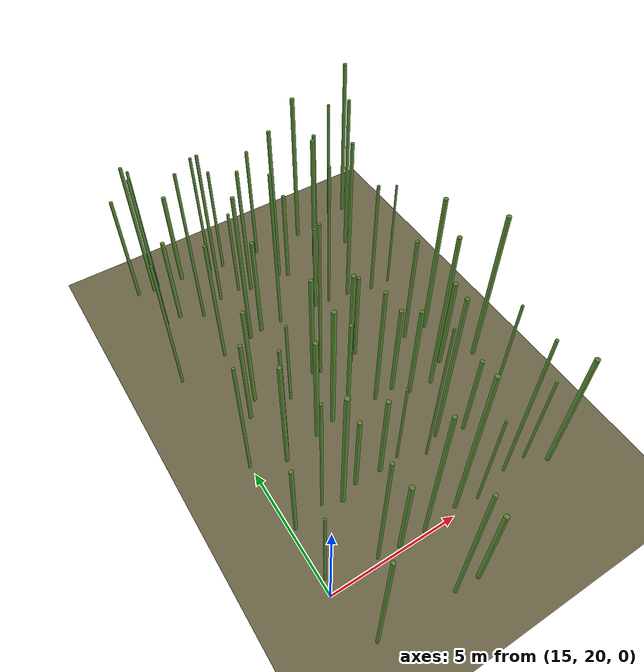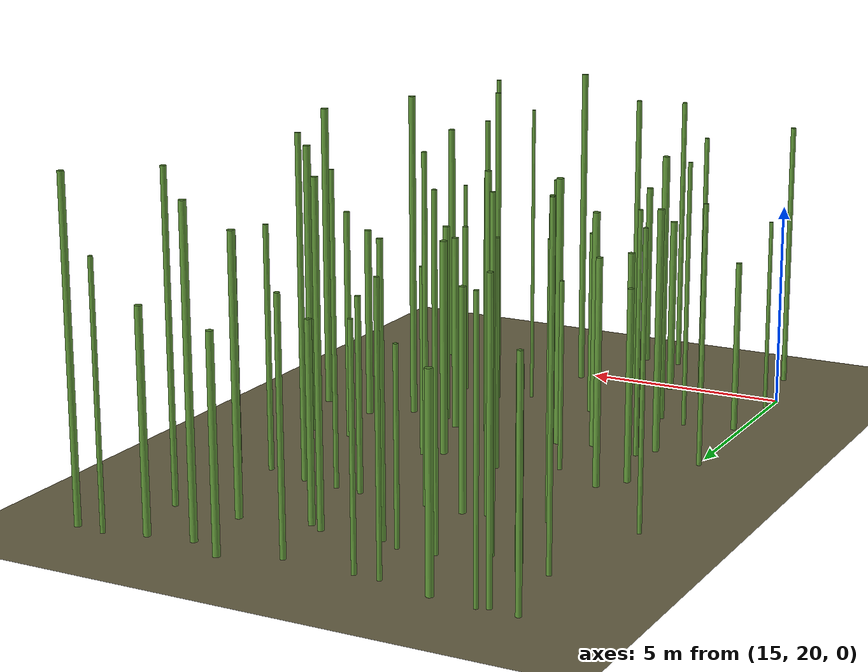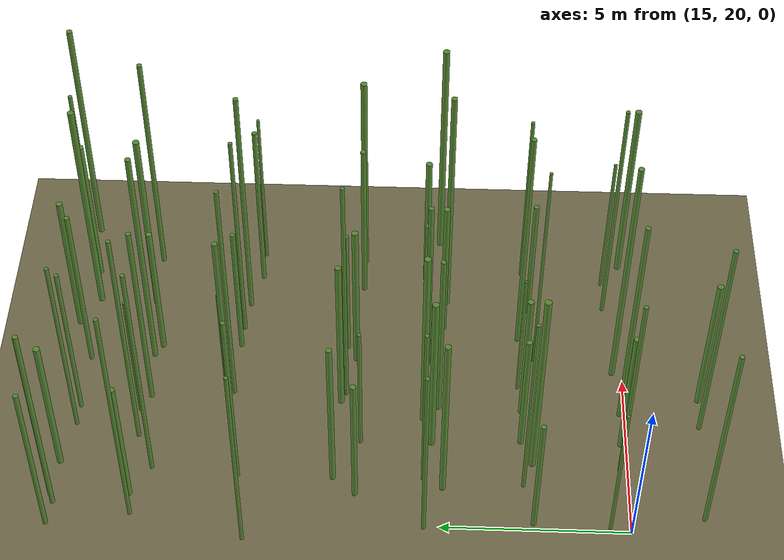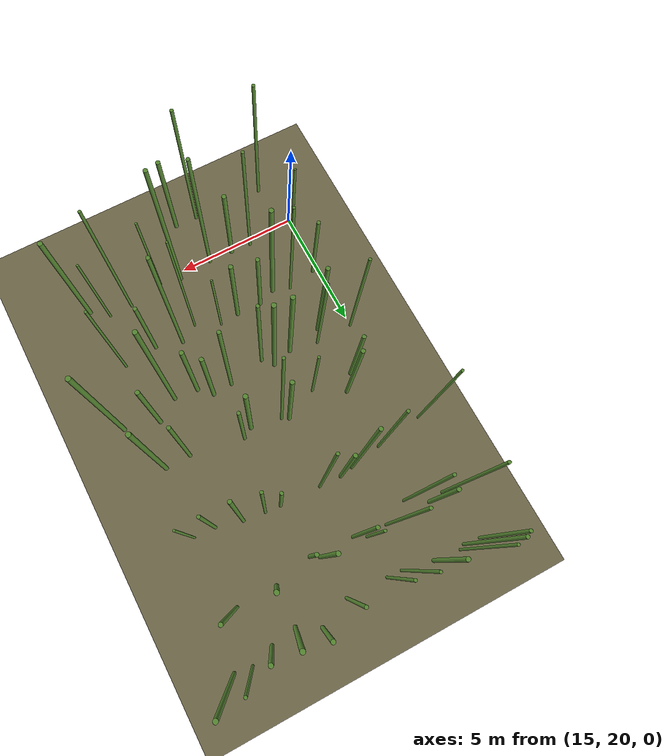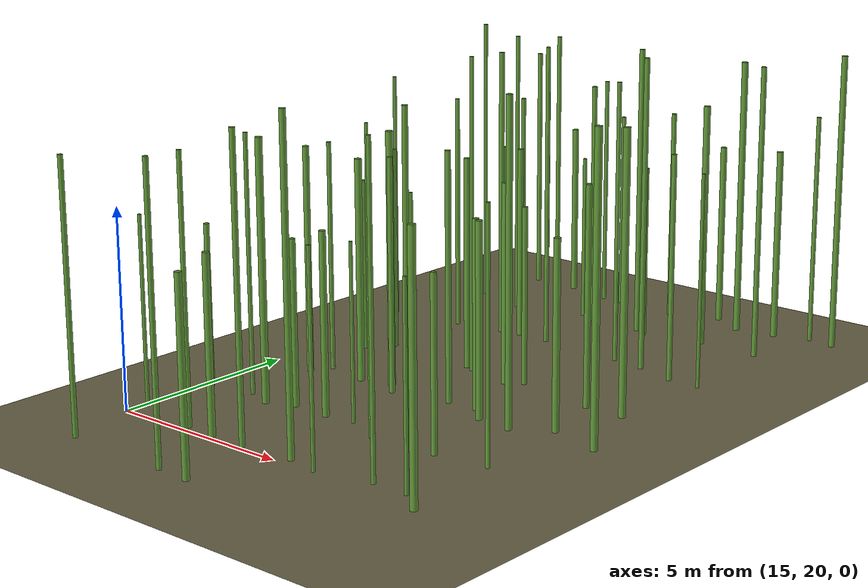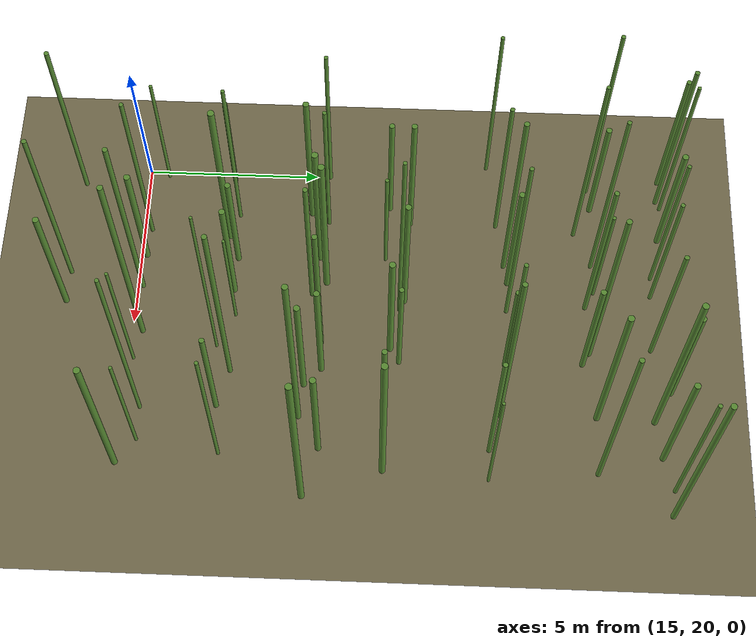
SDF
<sdf version="1.9">
 <world name="bamboo_field">
  <model name="ground_plane">
   <static>true</static>
   <link name="link">
    <collision name="collision">
     <geometry><plane><normal>0 0 1</normal><size>80.0 80.0</size></plane></geometry>
    </collision>
    <visual name="visual">
     <geometry><plane><normal>0 0 1</normal><size>80.0 80.0</size></plane></geometry>
     <material><diffuse>0.45 0.42 0.30 1</diffuse></material>
    </visual>
   </link>
  </model>
  <model name="bamboo_1522">
   <static>true</static>
   <pose>15.490901857358496 18.08850174011366 3.3179436203893204 0 0 0</pose>
   <link name="link">
    <collision name="collision">
     <geometry>
      <cylinder><radius>0.06358761564114757</radius><length>6.635887240778641</length></cylinder>
     </geometry>
    </collision>
    <visual name="visual">
     <geometry>
      <cylinder><radius>0.06358761564114757</radius><length>6.635887240778641</length></cylinder>
     </geometry>
     <material><diffuse>0.35 0.55 0.20 1</diffuse><specular>0.1 0.1 0.1 1</specular></material>
    </visual>
   </link>
  </model>
  <model name="bamboo_1525">
   <static>true</static>
   <pose>18.474241849818807 18.005302006522594 3.519818562739112 0 0 0</pose>
   <link name="link">
    <collision name="collision">
     <geometry>
      <cylinder><radius>0.06382065032558865</radius><length>7.039637125478224</length></cylinder>
     </geometry>
    </collision>
    <visual name="visual">
     <geometry>
      <cylinder><radius>0.06382065032558865</radius><length>7.039637125478224</length></cylinder>
     </geometry>
     <material><diffuse>0.35 0.55 0.20 1</diffuse><specular>0.1 0.1 0.1 1</specular></material>
    </visual>
   </link>
  </model>
  <model name="bamboo_1526">
   <static>true</static>
   <pose>19.405101789177046 17.968382880155293 2.347995917918729 0 0 0</pose>
   <link name="link">
    <collision name="collision">
     <geometry>
      <cylinder><radius>0.08498971547214515</radius><length>4.695991835837458</length></cylinder>
     </geometry>
    </collision>
    <visual name="visual">
     <geometry>
      <cylinder><radius>0.08498971547214515</radius><length>4.695991835837458</length></cylinder>
     </geometry>
     <material><diffuse>0.35 0.55 0.20 1</diffuse><specular>0.1 0.1 0.1 1</specular></material>
    </visual>
   </link>
  </model>
  <model name="bamboo_1593">
   <static>true</static>
   <pose>15.125374645759347 20.552177662558808 2.3669015575007712 0 0 0</pose>
   <link name="link">
    <collision name="collision">
     <geometry>
      <cylinder><radius>0.04673027699196455</radius><length>4.7338031150015425</length></cylinder>
     </geometry>
    </collision>
    <visual name="visual">
     <geometry>
      <cylinder><radius>0.04673027699196455</radius><length>4.7338031150015425</length></cylinder>
     </geometry>
     <material><diffuse>0.35 0.55 0.20 1</diffuse><specular>0.1 0.1 0.1 1</specular></material>
    </visual>
   </link>
  </model>
  <model name="bamboo_1594">
   <static>true</static>
   <pose>16.987656100251545 20.217749298145065 3.29880952020775 0 0 0</pose>
   <link name="link">
    <collision name="collision">
     <geometry>
      <cylinder><radius>0.058493695435638385</radius><length>6.5976190404155</length></cylinder>
     </geometry>
    </collision>
    <visual name="visual">
     <geometry>
      <cylinder><radius>0.058493695435638385</radius><length>6.5976190404155</length></cylinder>
     </geometry>
     <material><diffuse>0.35 0.55 0.20 1</diffuse><specular>0.1 0.1 0.1 1</specular></material>
    </visual>
   </link>
  </model>
  <model name="bamboo_1595">
   <static>true</static>
   <pose>17.833704743021098 20.14952041715921 2.193797204379194 0 0 0</pose>
   <link name="link">
    <collision name="collision">
     <geometry>
      <cylinder><radius>0.08723840496428546</radius><length>4.387594408758388</length></cylinder>
     </geometry>
    </collision>
    <visual name="visual">
     <geometry>
      <cylinder><radius>0.08723840496428546</radius><length>4.387594408758388</length></cylinder>
     </geometry>
     <material><diffuse>0.35 0.55 0.20 1</diffuse><specular>0.1 0.1 0.1 1</specular></material>
    </visual>
   </link>
  </model>
  <model name="bamboo_1596">
   <static>true</static>
   <pose>18.849895976428396 20.136698420463258 3.688130854488068 0 0 0</pose>
   <link name="link">
    <collision name="collision">
     <geometry>
      <cylinder><radius>0.06899141032555248</radius><length>7.376261708976136</length></cylinder>
     </geometry>
    </collision>
    <visual name="visual">
     <geometry>
      <cylinder><radius>0.06899141032555248</radius><length>7.376261708976136</length></cylinder>
     </geometry>
     <material><diffuse>0.35 0.55 0.20 1</diffuse><specular>0.1 0.1 0.1 1</specular></material>
    </visual>
   </link>
  </model>
  <model name="bamboo_1597">
   <static>true</static>
   <pose>20.283399732514855 20.274132848841692 3.97841074661888 0 0 0</pose>
   <link name="link">
    <collision name="collision">
     <geometry>
      <cylinder><radius>0.07673128742068416</radius><length>7.95682149323776</length></cylinder>
     </geometry>
    </collision>
    <visual name="visual">
     <geometry>
      <cylinder><radius>0.07673128742068416</radius><length>7.95682149323776</length></cylinder>
     </geometry>
     <material><diffuse>0.35 0.55 0.20 1</diffuse><specular>0.1 0.1 0.1 1</specular></material>
    </visual>
   </link>
  </model>
  <model name="bamboo_1598">
   <static>true</static>
   <pose>21.148964133604604 20.102432319429255 2.569581913435348 0 0 0</pose>
   <link name="link">
    <collision name="collision">
     <geometry>
      <cylinder><radius>0.04497332675283611</radius><length>5.139163826870696</length></cylinder>
     </geometry>
    </collision>
    <visual name="visual">
     <geometry>
      <cylinder><radius>0.04497332675283611</radius><length>5.139163826870696</length></cylinder>
     </geometry>
     <material><diffuse>0.35 0.55 0.20 1</diffuse><specular>0.1 0.1 0.1 1</specular></material>
    </visual>
   </link>
  </model>
  <model name="bamboo_1599">
   <static>true</static>
   <pose>22.63370897902683 20.43816653282347 3.8353861310992987 0 0 0</pose>
   <link name="link">
    <collision name="collision">
     <geometry>
      <cylinder><radius>0.0544239410531539</radius><length>7.670772262198597</length></cylinder>
     </geometry>
    </collision>
    <visual name="visual">
     <geometry>
      <cylinder><radius>0.0544239410531539</radius><length>7.670772262198597</length></cylinder>
     </geometry>
     <material><diffuse>0.35 0.55 0.20 1</diffuse><specular>0.1 0.1 0.1 1</specular></material>
    </visual>
   </link>
  </model>
  <model name="bamboo_1600">
   <static>true</static>
   <pose>23.59850441517398 20.43914368648169 2.413686224105409 0 0 0</pose>
   <link name="link">
    <collision name="collision">
     <geometry>
      <cylinder><radius>0.04705015625654757</radius><length>4.827372448210818</length></cylinder>
     </geometry>
    </collision>
    <visual name="visual">
     <geometry>
      <cylinder><radius>0.04705015625654757</radius><length>4.827372448210818</length></cylinder>
     </geometry>
     <material><diffuse>0.35 0.55 0.20 1</diffuse><specular>0.1 0.1 0.1 1</specular></material>
    </visual>
   </link>
  </model>
  <model name="bamboo_1601">
   <static>true</static>
   <pose>24.281585869360576 19.915403944170297 3.079659499792992 0 0 0</pose>
   <link name="link">
    <collision name="collision">
     <geometry>
      <cylinder><radius>0.08799283515313433</radius><length>6.159318999585984</length></cylinder>
     </geometry>
    </collision>
    <visual name="visual">
     <geometry>
      <cylinder><radius>0.08799283515313433</radius><length>6.159318999585984</length></cylinder>
     </geometry>
     <material><diffuse>0.35 0.55 0.20 1</diffuse><specular>0.1 0.1 0.1 1</specular></material>
    </visual>
   </link>
  </model>
  <model name="bamboo_1662">
   <static>true</static>
   <pose>15.203745911737995 22.542928623539368 2.0670563824060277 0 0 0</pose>
   <link name="link">
    <collision name="collision">
     <geometry>
      <cylinder><radius>0.07033872070648813</radius><length>4.1341127648120555</length></cylinder>
     </geometry>
    </collision>
    <visual name="visual">
     <geometry>
      <cylinder><radius>0.07033872070648813</radius><length>4.1341127648120555</length></cylinder>
     </geometry>
     <material><diffuse>0.35 0.55 0.20 1</diffuse><specular>0.1 0.1 0.1 1</specular></material>
    </visual>
   </link>
  </model>
  <model name="bamboo_1663">
   <static>true</static>
   <pose>16.40864536026427 22.78414221152748 3.250540823597118 0 0 0</pose>
   <link name="link">
    <collision name="collision">
     <geometry>
      <cylinder><radius>0.052651897696470405</radius><length>6.501081647194236</length></cylinder>
     </geometry>
    </collision>
    <visual name="visual">
     <geometry>
      <cylinder><radius>0.052651897696470405</radius><length>6.501081647194236</length></cylinder>
     </geometry>
     <material><diffuse>0.35 0.55 0.20 1</diffuse><specular>0.1 0.1 0.1 1</specular></material>
    </visual>
   </link>
  </model>
  <model name="bamboo_1664">
   <static>true</static>
   <pose>17.117331342553623 22.53922810676523 3.264480165458928 0 0 0</pose>
   <link name="link">
    <collision name="collision">
     <geometry>
      <cylinder><radius>0.0898615788696506</radius><length>6.528960330917856</length></cylinder>
     </geometry>
    </collision>
    <visual name="visual">
     <geometry>
      <cylinder><radius>0.0898615788696506</radius><length>6.528960330917856</length></cylinder>
     </geometry>
     <material><diffuse>0.35 0.55 0.20 1</diffuse><specular>0.1 0.1 0.1 1</specular></material>
    </visual>
   </link>
  </model>
  <model name="bamboo_1665">
   <static>true</static>
   <pose>17.844281614476152 22.83379981024662 2.076387187384573 0 0 0</pose>
   <link name="link">
    <collision name="collision">
     <geometry>
      <cylinder><radius>0.08037153426702592</radius><length>4.152774374769146</length></cylinder>
     </geometry>
    </collision>
    <visual name="visual">
     <geometry>
      <cylinder><radius>0.08037153426702592</radius><length>4.152774374769146</length></cylinder>
     </geometry>
     <material><diffuse>0.35 0.55 0.20 1</diffuse><specular>0.1 0.1 0.1 1</specular></material>
    </visual>
   </link>
  </model>
  <model name="bamboo_1666">
   <static>true</static>
   <pose>18.879073243768648 22.799876409936058 2.2632964116755816 0 0 0</pose>
   <link name="link">
    <collision name="collision">
     <geometry>
      <cylinder><radius>0.0835456610660788</radius><length>4.526592823351163</length></cylinder>
     </geometry>
    </collision>
    <visual name="visual">
     <geometry>
      <cylinder><radius>0.0835456610660788</radius><length>4.526592823351163</length></cylinder>
     </geometry>
     <material><diffuse>0.35 0.55 0.20 1</diffuse><specular>0.1 0.1 0.1 1</specular></material>
    </visual>
   </link>
  </model>
  <model name="bamboo_1667">
   <static>true</static>
   <pose>19.688650073200158 22.896196615216272 2.194950921206032 0 0 0</pose>
   <link name="link">
    <collision name="collision">
     <geometry>
      <cylinder><radius>0.04311627362453809</radius><length>4.389901842412064</length></cylinder>
     </geometry>
    </collision>
    <visual name="visual">
     <geometry>
      <cylinder><radius>0.04311627362453809</radius><length>4.389901842412064</length></cylinder>
     </geometry>
     <material><diffuse>0.35 0.55 0.20 1</diffuse><specular>0.1 0.1 0.1 1</specular></material>
    </visual>
   </link>
  </model>
  <model name="bamboo_1668">
   <static>true</static>
   <pose>20.679225602817034 22.42935041537308 3.6745470564364036 0 0 0</pose>
   <link name="link">
    <collision name="collision">
     <geometry>
      <cylinder><radius>0.04083372270042635</radius><length>7.349094112872807</length></cylinder>
     </geometry>
    </collision>
    <visual name="visual">
     <geometry>
      <cylinder><radius>0.04083372270042635</radius><length>7.349094112872807</length></cylinder>
     </geometry>
     <material><diffuse>0.35 0.55 0.20 1</diffuse><specular>0.1 0.1 0.1 1</specular></material>
    </visual>
   </link>
  </model>
  <model name="bamboo_1669">
   <static>true</static>
   <pose>21.430626480708806 22.866195828497126 3.8886019493081654 0 0 0</pose>
   <link name="link">
    <collision name="collision">
     <geometry>
      <cylinder><radius>0.06934237447460574</radius><length>7.777203898616331</length></cylinder>
     </geometry>
    </collision>
    <visual name="visual">
     <geometry>
      <cylinder><radius>0.06934237447460574</radius><length>7.777203898616331</length></cylinder>
     </geometry>
     <material><diffuse>0.35 0.55 0.20 1</diffuse><specular>0.1 0.1 0.1 1</specular></material>
    </visual>
   </link>
  </model>
  <model name="bamboo_1670">
   <static>true</static>
   <pose>22.507990680239413 22.55888220103141 2.129909801377951 0 0 0</pose>
   <link name="link">
    <collision name="collision">
     <geometry>
      <cylinder><radius>0.0734820587417049</radius><length>4.259819602755902</length></cylinder>
     </geometry>
    </collision>
    <visual name="visual">
     <geometry>
      <cylinder><radius>0.0734820587417049</radius><length>4.259819602755902</length></cylinder>
     </geometry>
     <material><diffuse>0.35 0.55 0.20 1</diffuse><specular>0.1 0.1 0.1 1</specular></material>
    </visual>
   </link>
  </model>
  <model name="bamboo_1671">
   <static>true</static>
   <pose>23.920477524274368 22.730594115170106 3.0109316618629025 0 0 0</pose>
   <link name="link">
    <collision name="collision">
     <geometry>
      <cylinder><radius>0.049934170055656396</radius><length>6.021863323725805</length></cylinder>
     </geometry>
    </collision>
    <visual name="visual">
     <geometry>
      <cylinder><radius>0.049934170055656396</radius><length>6.021863323725805</length></cylinder>
     </geometry>
     <material><diffuse>0.35 0.55 0.20 1</diffuse><specular>0.1 0.1 0.1 1</specular></material>
    </visual>
   </link>
  </model>
  <model name="bamboo_1729">
   <static>true</static>
   <pose>14.98791301596557 25.394181226632817 3.071254097409671 0 0 0</pose>
   <link name="link">
    <collision name="collision">
     <geometry>
      <cylinder><radius>0.0558887548380735</radius><length>6.142508194819342</length></cylinder>
     </geometry>
    </collision>
    <visual name="visual">
     <geometry>
      <cylinder><radius>0.0558887548380735</radius><length>6.142508194819342</length></cylinder>
     </geometry>
     <material><diffuse>0.35 0.55 0.20 1</diffuse><specular>0.1 0.1 0.1 1</specular></material>
    </visual>
   </link>
  </model>
  <model name="bamboo_1730">
   <static>true</static>
   <pose>16.25806233526042 24.917180254728883 2.898911851003286 0 0 0</pose>
   <link name="link">
    <collision name="collision">
     <geometry>
      <cylinder><radius>0.08130692181160686</radius><length>5.797823702006572</length></cylinder>
     </geometry>
    </collision>
    <visual name="visual">
     <geometry>
      <cylinder><radius>0.08130692181160686</radius><length>5.797823702006572</length></cylinder>
     </geometry>
     <material><diffuse>0.35 0.55 0.20 1</diffuse><specular>0.1 0.1 0.1 1</specular></material>
    </visual>
   </link>
  </model>
  <model name="bamboo_1731">
   <static>true</static>
   <pose>16.547277536909057 25.42793823514104 2.9280429729251654 0 0 0</pose>
   <link name="link">
    <collision name="collision">
     <geometry>
      <cylinder><radius>0.05670274241377968</radius><length>5.856085945850331</length></cylinder>
     </geometry>
    </collision>
    <visual name="visual">
     <geometry>
      <cylinder><radius>0.05670274241377968</radius><length>5.856085945850331</length></cylinder>
     </geometry>
     <material><diffuse>0.35 0.55 0.20 1</diffuse><specular>0.1 0.1 0.1 1</specular></material>
    </visual>
   </link>
  </model>
  <model name="bamboo_1732">
   <static>true</static>
   <pose>17.725521251286683 25.22605479235253 2.820587608052417 0 0 0</pose>
   <link name="link">
    <collision name="collision">
     <geometry>
      <cylinder><radius>0.08871236958290248</radius><length>5.641175216104834</length></cylinder>
     </geometry>
    </collision>
    <visual name="visual">
     <geometry>
      <cylinder><radius>0.08871236958290248</radius><length>5.641175216104834</length></cylinder>
     </geometry>
     <material><diffuse>0.35 0.55 0.20 1</diffuse><specular>0.1 0.1 0.1 1</specular></material>
    </visual>
   </link>
  </model>
  <model name="bamboo_1733">
   <static>true</static>
   <pose>18.547961851754128 25.45468392887799 3.1991363401798116 0 0 0</pose>
   <link name="link">
    <collision name="collision">
     <geometry>
      <cylinder><radius>0.08994549419004685</radius><length>6.398272680359623</length></cylinder>
     </geometry>
    </collision>
    <visual name="visual">
     <geometry>
      <cylinder><radius>0.08994549419004685</radius><length>6.398272680359623</length></cylinder>
     </geometry>
     <material><diffuse>0.35 0.55 0.20 1</diffuse><specular>0.1 0.1 0.1 1</specular></material>
    </visual>
   </link>
  </model>
  <model name="bamboo_1734">
   <static>true</static>
   <pose>18.92914288786938 25.052048753887693 2.9438270879441957 0 0 0</pose>
   <link name="link">
    <collision name="collision">
     <geometry>
      <cylinder><radius>0.06846530736442473</radius><length>5.887654175888391</length></cylinder>
     </geometry>
    </collision>
    <visual name="visual">
     <geometry>
      <cylinder><radius>0.06846530736442473</radius><length>5.887654175888391</length></cylinder>
     </geometry>
     <material><diffuse>0.35 0.55 0.20 1</diffuse><specular>0.1 0.1 0.1 1</specular></material>
    </visual>
   </link>
  </model>
  <model name="bamboo_1735">
   <static>true</static>
   <pose>20.467059320260237 25.38805792492165 3.104114718904129 0 0 0</pose>
   <link name="link">
    <collision name="collision">
     <geometry>
      <cylinder><radius>0.07270580224295682</radius><length>6.208229437808258</length></cylinder>
     </geometry>
    </collision>
    <visual name="visual">
     <geometry>
      <cylinder><radius>0.07270580224295682</radius><length>6.208229437808258</length></cylinder>
     </geometry>
     <material><diffuse>0.35 0.55 0.20 1</diffuse><specular>0.1 0.1 0.1 1</specular></material>
    </visual>
   </link>
  </model>
  <model name="bamboo_1736">
   <static>true</static>
   <pose>21.28320286015789 25.43781159457552 2.3504219870592484 0 0 0</pose>
   <link name="link">
    <collision name="collision">
     <geometry>
      <cylinder><radius>0.08373250985120062</radius><length>4.700843974118497</length></cylinder>
     </geometry>
    </collision>
    <visual name="visual">
     <geometry>
      <cylinder><radius>0.08373250985120062</radius><length>4.700843974118497</length></cylinder>
     </geometry>
     <material><diffuse>0.35 0.55 0.20 1</diffuse><specular>0.1 0.1 0.1 1</specular></material>
    </visual>
   </link>
  </model>
  <model name="bamboo_1737">
   <static>true</static>
   <pose>21.779119631119325 24.964374494960186 2.414014541769061 0 0 0</pose>
   <link name="link">
    <collision name="collision">
     <geometry>
      <cylinder><radius>0.08472228289801245</radius><length>4.828029083538122</length></cylinder>
     </geometry>
    </collision>
    <visual name="visual">
     <geometry>
      <cylinder><radius>0.08472228289801245</radius><length>4.828029083538122</length></cylinder>
     </geometry>
     <material><diffuse>0.35 0.55 0.20 1</diffuse><specular>0.1 0.1 0.1 1</specular></material>
    </visual>
   </link>
  </model>
  <model name="bamboo_1738">
   <static>true</static>
   <pose>22.747743971899343 24.87065172298785 3.945610574802849 0 0 0</pose>
   <link name="link">
    <collision name="collision">
     <geometry>
      <cylinder><radius>0.07983767784270565</radius><length>7.891221149605698</length></cylinder>
     </geometry>
    </collision>
    <visual name="visual">
     <geometry>
      <cylinder><radius>0.07983767784270565</radius><length>7.891221149605698</length></cylinder>
     </geometry>
     <material><diffuse>0.35 0.55 0.20 1</diffuse><specular>0.1 0.1 0.1 1</specular></material>
    </visual>
   </link>
  </model>
  <model name="bamboo_1739">
   <static>true</static>
   <pose>23.662744795722087 25.466573433764452 2.3185331708917536 0 0 0</pose>
   <link name="link">
    <collision name="collision">
     <geometry>
      <cylinder><radius>0.08600779075506278</radius><length>4.637066341783507</length></cylinder>
     </geometry>
    </collision>
    <visual name="visual">
     <geometry>
      <cylinder><radius>0.08600779075506278</radius><length>4.637066341783507</length></cylinder>
     </geometry>
     <material><diffuse>0.35 0.55 0.20 1</diffuse><specular>0.1 0.1 0.1 1</specular></material>
    </visual>
   </link>
  </model>
  <model name="bamboo_1740">
   <static>true</static>
   <pose>25.06195443816723 25.084804343033106 3.7243379411893427 0 0 0</pose>
   <link name="link">
    <collision name="collision">
     <geometry>
      <cylinder><radius>0.08977672750883148</radius><length>7.448675882378685</length></cylinder>
     </geometry>
    </collision>
    <visual name="visual">
     <geometry>
      <cylinder><radius>0.08977672750883148</radius><length>7.448675882378685</length></cylinder>
     </geometry>
     <material><diffuse>0.35 0.55 0.20 1</diffuse><specular>0.1 0.1 0.1 1</specular></material>
    </visual>
   </link>
  </model>
  <model name="bamboo_1804">
   <static>true</static>
   <pose>15.996829312191984 27.210345980851866 2.2434075051975695 0 0 0</pose>
   <link name="link">
    <collision name="collision">
     <geometry>
      <cylinder><radius>0.07622591701019413</radius><length>4.486815010395139</length></cylinder>
     </geometry>
    </collision>
    <visual name="visual">
     <geometry>
      <cylinder><radius>0.07622591701019413</radius><length>4.486815010395139</length></cylinder>
     </geometry>
     <material><diffuse>0.35 0.55 0.20 1</diffuse><specular>0.1 0.1 0.1 1</specular></material>
    </visual>
   </link>
  </model>
  <model name="bamboo_1805">
   <static>true</static>
   <pose>16.49653503360562 27.815701625860747 2.6337591620553713 0 0 0</pose>
   <link name="link">
    <collision name="collision">
     <geometry>
      <cylinder><radius>0.07748412951654104</radius><length>5.267518324110743</length></cylinder>
     </geometry>
    </collision>
    <visual name="visual">
     <geometry>
      <cylinder><radius>0.07748412951654104</radius><length>5.267518324110743</length></cylinder>
     </geometry>
     <material><diffuse>0.35 0.55 0.20 1</diffuse><specular>0.1 0.1 0.1 1</specular></material>
    </visual>
   </link>
  </model>
  <model name="bamboo_1806">
   <static>true</static>
   <pose>17.7026323426499 27.131174069280938 2.2239847175016525 0 0 0</pose>
   <link name="link">
    <collision name="collision">
     <geometry>
      <cylinder><radius>0.0527642268347499</radius><length>4.447969435003305</length></cylinder>
     </geometry>
    </collision>
    <visual name="visual">
     <geometry>
      <cylinder><radius>0.0527642268347499</radius><length>4.447969435003305</length></cylinder>
     </geometry>
     <material><diffuse>0.35 0.55 0.20 1</diffuse><specular>0.1 0.1 0.1 1</specular></material>
    </visual>
   </link>
  </model>
  <model name="bamboo_1807">
   <static>true</static>
   <pose>19.066141636099502 27.71166939758581 2.709362199312336 0 0 0</pose>
   <link name="link">
    <collision name="collision">
     <geometry>
      <cylinder><radius>0.0828746536746867</radius><length>5.418724398624672</length></cylinder>
     </geometry>
    </collision>
    <visual name="visual">
     <geometry>
      <cylinder><radius>0.0828746536746867</radius><length>5.418724398624672</length></cylinder>
     </geometry>
     <material><diffuse>0.35 0.55 0.20 1</diffuse><specular>0.1 0.1 0.1 1</specular></material>
    </visual>
   </link>
  </model>
  <model name="bamboo_1808">
   <static>true</static>
   <pose>19.33690497160084 27.576602521929892 3.999413128215282 0 0 0</pose>
   <link name="link">
    <collision name="collision">
     <geometry>
      <cylinder><radius>0.055034721877187054</radius><length>7.998826256430564</length></cylinder>
     </geometry>
    </collision>
    <visual name="visual">
     <geometry>
      <cylinder><radius>0.055034721877187054</radius><length>7.998826256430564</length></cylinder>
     </geometry>
     <material><diffuse>0.35 0.55 0.20 1</diffuse><specular>0.1 0.1 0.1 1</specular></material>
    </visual>
   </link>
  </model>
  <model name="bamboo_1809">
   <static>true</static>
   <pose>20.586815157259817 27.352384805807027 2.549432258749442 0 0 0</pose>
   <link name="link">
    <collision name="collision">
     <geometry>
      <cylinder><radius>0.08756545721152217</radius><length>5.098864517498884</length></cylinder>
     </geometry>
    </collision>
    <visual name="visual">
     <geometry>
      <cylinder><radius>0.08756545721152217</radius><length>5.098864517498884</length></cylinder>
     </geometry>
     <material><diffuse>0.35 0.55 0.20 1</diffuse><specular>0.1 0.1 0.1 1</specular></material>
    </visual>
   </link>
  </model>
  <model name="bamboo_1810">
   <static>true</static>
   <pose>20.998988573792307 27.612644300716003 2.2558966058287324 0 0 0</pose>
   <link name="link">
    <collision name="collision">
     <geometry>
      <cylinder><radius>0.06822896242487204</radius><length>4.511793211657465</length></cylinder>
     </geometry>
    </collision>
    <visual name="visual">
     <geometry>
      <cylinder><radius>0.06822896242487204</radius><length>4.511793211657465</length></cylinder>
     </geometry>
     <material><diffuse>0.35 0.55 0.20 1</diffuse><specular>0.1 0.1 0.1 1</specular></material>
    </visual>
   </link>
  </model>
  <model name="bamboo_1811">
   <static>true</static>
   <pose>23.206238457933154 27.236333039245377 2.743408078216836 0 0 0</pose>
   <link name="link">
    <collision name="collision">
     <geometry>
      <cylinder><radius>0.07304760951291195</radius><length>5.486816156433672</length></cylinder>
     </geometry>
    </collision>
    <visual name="visual">
     <geometry>
      <cylinder><radius>0.07304760951291195</radius><length>5.486816156433672</length></cylinder>
     </geometry>
     <material><diffuse>0.35 0.55 0.20 1</diffuse><specular>0.1 0.1 0.1 1</specular></material>
    </visual>
   </link>
  </model>
  <model name="bamboo_1812">
   <static>true</static>
   <pose>24.252016766456205 27.253225437856685 3.483933341643476 0 0 0</pose>
   <link name="link">
    <collision name="collision">
     <geometry>
      <cylinder><radius>0.08826500942982006</radius><length>6.967866683286952</length></cylinder>
     </geometry>
    </collision>
    <visual name="visual">
     <geometry>
      <cylinder><radius>0.08826500942982006</radius><length>6.967866683286952</length></cylinder>
     </geometry>
     <material><diffuse>0.35 0.55 0.20 1</diffuse><specular>0.1 0.1 0.1 1</specular></material>
    </visual>
   </link>
  </model>
  <model name="bamboo_1868">
   <static>true</static>
   <pose>14.496019618444096 30.058675844903853 3.295790103249629 0 0 0</pose>
   <link name="link">
    <collision name="collision">
     <geometry>
      <cylinder><radius>0.05129163259281065</radius><length>6.591580206499258</length></cylinder>
     </geometry>
    </collision>
    <visual name="visual">
     <geometry>
      <cylinder><radius>0.05129163259281065</radius><length>6.591580206499258</length></cylinder>
     </geometry>
     <material><diffuse>0.35 0.55 0.20 1</diffuse><specular>0.1 0.1 0.1 1</specular></material>
    </visual>
   </link>
  </model>
  <model name="bamboo_1869">
   <static>true</static>
   <pose>16.484862228802907 30.338609492882796 3.102452307915279 0 0 0</pose>
   <link name="link">
    <collision name="collision">
     <geometry>
      <cylinder><radius>0.060726292042554295</radius><length>6.204904615830558</length></cylinder>
     </geometry>
    </collision>
    <visual name="visual">
     <geometry>
      <cylinder><radius>0.060726292042554295</radius><length>6.204904615830558</length></cylinder>
     </geometry>
     <material><diffuse>0.35 0.55 0.20 1</diffuse><specular>0.1 0.1 0.1 1</specular></material>
    </visual>
   </link>
  </model>
  <model name="bamboo_1870">
   <static>true</static>
   <pose>17.811755905946914 30.57273794313345 3.777208282088379 0 0 0</pose>
   <link name="link">
    <collision name="collision">
     <geometry>
      <cylinder><radius>0.07136275543848308</radius><length>7.554416564176758</length></cylinder>
     </geometry>
    </collision>
    <visual name="visual">
     <geometry>
      <cylinder><radius>0.07136275543848308</radius><length>7.554416564176758</length></cylinder>
     </geometry>
     <material><diffuse>0.35 0.55 0.20 1</diffuse><specular>0.1 0.1 0.1 1</specular></material>
    </visual>
   </link>
  </model>
  <model name="bamboo_1871">
   <static>true</static>
   <pose>18.368222470504662 30.68001999878566 2.527114680876057 0 0 0</pose>
   <link name="link">
    <collision name="collision">
     <geometry>
      <cylinder><radius>0.08017130427126784</radius><length>5.054229361752114</length></cylinder>
     </geometry>
    </collision>
    <visual name="visual">
     <geometry>
      <cylinder><radius>0.08017130427126784</radius><length>5.054229361752114</length></cylinder>
     </geometry>
     <material><diffuse>0.35 0.55 0.20 1</diffuse><specular>0.1 0.1 0.1 1</specular></material>
    </visual>
   </link>
  </model>
  <model name="bamboo_1872">
   <static>true</static>
   <pose>19.27797634939528 30.65194428684513 3.9161821856081342 0 0 0</pose>
   <link name="link">
    <collision name="collision">
     <geometry>
      <cylinder><radius>0.05785370859393493</radius><length>7.8323643712162685</length></cylinder>
     </geometry>
    </collision>
    <visual name="visual">
     <geometry>
      <cylinder><radius>0.05785370859393493</radius><length>7.8323643712162685</length></cylinder>
     </geometry>
     <material><diffuse>0.35 0.55 0.20 1</diffuse><specular>0.1 0.1 0.1 1</specular></material>
    </visual>
   </link>
  </model>
  <model name="bamboo_1873">
   <static>true</static>
   <pose>20.965041422483434 30.59893602336625 2.2575293495747655 0 0 0</pose>
   <link name="link">
    <collision name="collision">
     <geometry>
      <cylinder><radius>0.06691377124896589</radius><length>4.515058699149531</length></cylinder>
     </geometry>
    </collision>
    <visual name="visual">
     <geometry>
      <cylinder><radius>0.06691377124896589</radius><length>4.515058699149531</length></cylinder>
     </geometry>
     <material><diffuse>0.35 0.55 0.20 1</diffuse><specular>0.1 0.1 0.1 1</specular></material>
    </visual>
   </link>
  </model>
  <model name="bamboo_1874">
   <static>true</static>
   <pose>21.60417934918551 30.554057369586527 3.614507136140671 0 0 0</pose>
   <link name="link">
    <collision name="collision">
     <geometry>
      <cylinder><radius>0.0556742390635638</radius><length>7.229014272281342</length></cylinder>
     </geometry>
    </collision>
    <visual name="visual">
     <geometry>
      <cylinder><radius>0.0556742390635638</radius><length>7.229014272281342</length></cylinder>
     </geometry>
     <material><diffuse>0.35 0.55 0.20 1</diffuse><specular>0.1 0.1 0.1 1</specular></material>
    </visual>
   </link>
  </model>
  <model name="bamboo_1875">
   <static>true</static>
   <pose>22.49404155807176 30.4519644042056 3.9701541695589393 0 0 0</pose>
   <link name="link">
    <collision name="collision">
     <geometry>
      <cylinder><radius>0.06770364128838387</radius><length>7.940308339117879</length></cylinder>
     </geometry>
    </collision>
    <visual name="visual">
     <geometry>
      <cylinder><radius>0.06770364128838387</radius><length>7.940308339117879</length></cylinder>
     </geometry>
     <material><diffuse>0.35 0.55 0.20 1</diffuse><specular>0.1 0.1 0.1 1</specular></material>
    </visual>
   </link>
  </model>
  <model name="bamboo_1876">
   <static>true</static>
   <pose>23.556836443057104 30.16992182358504 2.8723685006001256 0 0 0</pose>
   <link name="link">
    <collision name="collision">
     <geometry>
      <cylinder><radius>0.06485664732421298</radius><length>5.744737001200251</length></cylinder>
     </geometry>
    </collision>
    <visual name="visual">
     <geometry>
      <cylinder><radius>0.06485664732421298</radius><length>5.744737001200251</length></cylinder>
     </geometry>
     <material><diffuse>0.35 0.55 0.20 1</diffuse><specular>0.1 0.1 0.1 1</specular></material>
    </visual>
   </link>
  </model>
  <model name="bamboo_1877">
   <static>true</static>
   <pose>24.4209091308078 30.15349908268723 2.6952062022183307 0 0 0</pose>
   <link name="link">
    <collision name="collision">
     <geometry>
      <cylinder><radius>0.042877288272917875</radius><length>5.3904124044366615</length></cylinder>
     </geometry>
    </collision>
    <visual name="visual">
     <geometry>
      <cylinder><radius>0.042877288272917875</radius><length>5.3904124044366615</length></cylinder>
     </geometry>
     <material><diffuse>0.35 0.55 0.20 1</diffuse><specular>0.1 0.1 0.1 1</specular></material>
    </visual>
   </link>
  </model>
  <model name="bamboo_1940">
   <static>true</static>
   <pose>15.188316425190807 33.04191865674211 3.8660404348878954 0 0 0</pose>
   <link name="link">
    <collision name="collision">
     <geometry>
      <cylinder><radius>0.05581073016314135</radius><length>7.732080869775791</length></cylinder>
     </geometry>
    </collision>
    <visual name="visual">
     <geometry>
      <cylinder><radius>0.05581073016314135</radius><length>7.732080869775791</length></cylinder>
     </geometry>
     <material><diffuse>0.35 0.55 0.20 1</diffuse><specular>0.1 0.1 0.1 1</specular></material>
    </visual>
   </link>
  </model>
  <model name="bamboo_1941">
   <static>true</static>
   <pose>15.81612370327876 33.1307708094843 2.1715001169065546 0 0 0</pose>
   <link name="link">
    <collision name="collision">
     <geometry>
      <cylinder><radius>0.0793481128161248</radius><length>4.343000233813109</length></cylinder>
     </geometry>
    </collision>
    <visual name="visual">
     <geometry>
      <cylinder><radius>0.0793481128161248</radius><length>4.343000233813109</length></cylinder>
     </geometry>
     <material><diffuse>0.35 0.55 0.20 1</diffuse><specular>0.1 0.1 0.1 1</specular></material>
    </visual>
   </link>
  </model>
  <model name="bamboo_1942">
   <static>true</static>
   <pose>16.673261656835777 32.63261837661004 3.8036075138553436 0 0 0</pose>
   <link name="link">
    <collision name="collision">
     <geometry>
      <cylinder><radius>0.05566469406022229</radius><length>7.607215027710687</length></cylinder>
     </geometry>
    </collision>
    <visual name="visual">
     <geometry>
      <cylinder><radius>0.05566469406022229</radius><length>7.607215027710687</length></cylinder>
     </geometry>
     <material><diffuse>0.35 0.55 0.20 1</diffuse><specular>0.1 0.1 0.1 1</specular></material>
    </visual>
   </link>
  </model>
  <model name="bamboo_1943">
   <static>true</static>
   <pose>17.72477541465826 33.106974477631674 3.8184912102743986 0 0 0</pose>
   <link name="link">
    <collision name="collision">
     <geometry>
      <cylinder><radius>0.05814700313777912</radius><length>7.636982420548797</length></cylinder>
     </geometry>
    </collision>
    <visual name="visual">
     <geometry>
      <cylinder><radius>0.05814700313777912</radius><length>7.636982420548797</length></cylinder>
     </geometry>
     <material><diffuse>0.35 0.55 0.20 1</diffuse><specular>0.1 0.1 0.1 1</specular></material>
    </visual>
   </link>
  </model>
  <model name="bamboo_1944">
   <static>true</static>
   <pose>18.599717672019047 33.15776826177144 2.2029989779343593 0 0 0</pose>
   <link name="link">
    <collision name="collision">
     <geometry>
      <cylinder><radius>0.05448705244930106</radius><length>4.405997955868719</length></cylinder>
     </geometry>
    </collision>
    <visual name="visual">
     <geometry>
      <cylinder><radius>0.05448705244930106</radius><length>4.405997955868719</length></cylinder>
     </geometry>
     <material><diffuse>0.35 0.55 0.20 1</diffuse><specular>0.1 0.1 0.1 1</specular></material>
    </visual>
   </link>
  </model>
  <model name="bamboo_1945">
   <static>true</static>
   <pose>19.077999435562226 32.91382116652397 3.236577785159348 0 0 0</pose>
   <link name="link">
    <collision name="collision">
     <geometry>
      <cylinder><radius>0.06661525901788155</radius><length>6.473155570318696</length></cylinder>
     </geometry>
    </collision>
    <visual name="visual">
     <geometry>
      <cylinder><radius>0.06661525901788155</radius><length>6.473155570318696</length></cylinder>
     </geometry>
     <material><diffuse>0.35 0.55 0.20 1</diffuse><specular>0.1 0.1 0.1 1</specular></material>
    </visual>
   </link>
  </model>
  <model name="bamboo_1946">
   <static>true</static>
   <pose>20.538317520116095 32.99190468408808 3.8073032237498428 0 0 0</pose>
   <link name="link">
    <collision name="collision">
     <geometry>
      <cylinder><radius>0.07449818560778898</radius><length>7.6146064474996855</length></cylinder>
     </geometry>
    </collision>
    <visual name="visual">
     <geometry>
      <cylinder><radius>0.07449818560778898</radius><length>7.6146064474996855</length></cylinder>
     </geometry>
     <material><diffuse>0.35 0.55 0.20 1</diffuse><specular>0.1 0.1 0.1 1</specular></material>
    </visual>
   </link>
  </model>
  <model name="bamboo_1947">
   <static>true</static>
   <pose>20.880353127478564 32.79275514902841 2.2711974811588496 0 0 0</pose>
   <link name="link">
    <collision name="collision">
     <geometry>
      <cylinder><radius>0.07778367565549103</radius><length>4.542394962317699</length></cylinder>
     </geometry>
    </collision>
    <visual name="visual">
     <geometry>
      <cylinder><radius>0.07778367565549103</radius><length>4.542394962317699</length></cylinder>
     </geometry>
     <material><diffuse>0.35 0.55 0.20 1</diffuse><specular>0.1 0.1 0.1 1</specular></material>
    </visual>
   </link>
  </model>
  <model name="bamboo_1948">
   <static>true</static>
   <pose>22.484404075086086 33.15298795136048 3.1697824086533526 0 0 0</pose>
   <link name="link">
    <collision name="collision">
     <geometry>
      <cylinder><radius>0.08654710905288775</radius><length>6.339564817306705</length></cylinder>
     </geometry>
    </collision>
    <visual name="visual">
     <geometry>
      <cylinder><radius>0.08654710905288775</radius><length>6.339564817306705</length></cylinder>
     </geometry>
     <material><diffuse>0.35 0.55 0.20 1</diffuse><specular>0.1 0.1 0.1 1</specular></material>
    </visual>
   </link>
  </model>
  <model name="bamboo_1949">
   <static>true</static>
   <pose>24.136709901206764 33.14773981487793 3.7712077251043414 0 0 0</pose>
   <link name="link">
    <collision name="collision">
     <geometry>
      <cylinder><radius>0.06833915030353845</radius><length>7.542415450208683</length></cylinder>
     </geometry>
    </collision>
    <visual name="visual">
     <geometry>
      <cylinder><radius>0.06833915030353845</radius><length>7.542415450208683</length></cylinder>
     </geometry>
     <material><diffuse>0.35 0.55 0.20 1</diffuse><specular>0.1 0.1 0.1 1</specular></material>
    </visual>
   </link>
  </model>
  <model name="bamboo_2006">
   <static>true</static>
   <pose>14.815950910222579 35.18898361525167 2.645900508575518 0 0 0</pose>
   <link name="link">
    <collision name="collision">
     <geometry>
      <cylinder><radius>0.06502919372896068</radius><length>5.291801017151036</length></cylinder>
     </geometry>
    </collision>
    <visual name="visual">
     <geometry>
      <cylinder><radius>0.06502919372896068</radius><length>5.291801017151036</length></cylinder>
     </geometry>
     <material><diffuse>0.35 0.55 0.20 1</diffuse><specular>0.1 0.1 0.1 1</specular></material>
    </visual>
   </link>
  </model>
  <model name="bamboo_2007">
   <static>true</static>
   <pose>15.482466370464348 35.104821270248394 3.3392841475418535 0 0 0</pose>
   <link name="link">
    <collision name="collision">
     <geometry>
      <cylinder><radius>0.06461136319619161</radius><length>6.678568295083707</length></cylinder>
     </geometry>
    </collision>
    <visual name="visual">
     <geometry>
      <cylinder><radius>0.06461136319619161</radius><length>6.678568295083707</length></cylinder>
     </geometry>
     <material><diffuse>0.35 0.55 0.20 1</diffuse><specular>0.1 0.1 0.1 1</specular></material>
    </visual>
   </link>
  </model>
  <model name="bamboo_2008">
   <static>true</static>
   <pose>15.715537718789955 35.21107646113395 3.1654783709565555 0 0 0</pose>
   <link name="link">
    <collision name="collision">
     <geometry>
      <cylinder><radius>0.050441830467248705</radius><length>6.330956741913111</length></cylinder>
     </geometry>
    </collision>
    <visual name="visual">
     <geometry>
      <cylinder><radius>0.050441830467248705</radius><length>6.330956741913111</length></cylinder>
     </geometry>
     <material><diffuse>0.35 0.55 0.20 1</diffuse><specular>0.1 0.1 0.1 1</specular></material>
    </visual>
   </link>
  </model>
  <model name="bamboo_2009">
   <static>true</static>
   <pose>16.7921091752422 35.095160501423365 2.328358358102761 0 0 0</pose>
   <link name="link">
    <collision name="collision">
     <geometry>
      <cylinder><radius>0.08492894851752991</radius><length>4.656716716205522</length></cylinder>
     </geometry>
    </collision>
    <visual name="visual">
     <geometry>
      <cylinder><radius>0.08492894851752991</radius><length>4.656716716205522</length></cylinder>
     </geometry>
     <material><diffuse>0.35 0.55 0.20 1</diffuse><specular>0.1 0.1 0.1 1</specular></material>
    </visual>
   </link>
  </model>
  <model name="bamboo_2010">
   <static>true</static>
   <pose>18.066860345343862 34.83170383852434 3.1125254388794388 0 0 0</pose>
   <link name="link">
    <collision name="collision">
     <geometry>
      <cylinder><radius>0.05407085741521668</radius><length>6.2250508777588776</length></cylinder>
     </geometry>
    </collision>
    <visual name="visual">
     <geometry>
      <cylinder><radius>0.05407085741521668</radius><length>6.2250508777588776</length></cylinder>
     </geometry>
     <material><diffuse>0.35 0.55 0.20 1</diffuse><specular>0.1 0.1 0.1 1</specular></material>
    </visual>
   </link>
  </model>
  <model name="bamboo_2011">
   <static>true</static>
   <pose>18.672118269279345 34.80321687569144 2.6541161670972127 0 0 0</pose>
   <link name="link">
    <collision name="collision">
     <geometry>
      <cylinder><radius>0.05672428704640732</radius><length>5.308232334194425</length></cylinder>
     </geometry>
    </collision>
    <visual name="visual">
     <geometry>
      <cylinder><radius>0.05672428704640732</radius><length>5.308232334194425</length></cylinder>
     </geometry>
     <material><diffuse>0.35 0.55 0.20 1</diffuse><specular>0.1 0.1 0.1 1</specular></material>
    </visual>
   </link>
  </model>
  <model name="bamboo_2012">
   <static>true</static>
   <pose>20.37476123662116 34.748961575049584 2.8113816410987087 0 0 0</pose>
   <link name="link">
    <collision name="collision">
     <geometry>
      <cylinder><radius>0.06559025539830947</radius><length>5.622763282197417</length></cylinder>
     </geometry>
    </collision>
    <visual name="visual">
     <geometry>
      <cylinder><radius>0.06559025539830947</radius><length>5.622763282197417</length></cylinder>
     </geometry>
     <material><diffuse>0.35 0.55 0.20 1</diffuse><specular>0.1 0.1 0.1 1</specular></material>
    </visual>
   </link>
  </model>
  <model name="bamboo_2013">
   <static>true</static>
   <pose>21.666378019754294 35.24289063960513 2.4002852702104938 0 0 0</pose>
   <link name="link">
    <collision name="collision">
     <geometry>
      <cylinder><radius>0.08371171601324646</radius><length>4.8005705404209875</length></cylinder>
     </geometry>
    </collision>
    <visual name="visual">
     <geometry>
      <cylinder><radius>0.08371171601324646</radius><length>4.8005705404209875</length></cylinder>
     </geometry>
     <material><diffuse>0.35 0.55 0.20 1</diffuse><specular>0.1 0.1 0.1 1</specular></material>
    </visual>
   </link>
  </model>
  <model name="bamboo_2014">
   <static>true</static>
   <pose>22.553061841324823 34.757856801485424 3.635720585336843 0 0 0</pose>
   <link name="link">
    <collision name="collision">
     <geometry>
      <cylinder><radius>0.08433260768400809</radius><length>7.271441170673686</length></cylinder>
     </geometry>
    </collision>
    <visual name="visual">
     <geometry>
      <cylinder><radius>0.08433260768400809</radius><length>7.271441170673686</length></cylinder>
     </geometry>
     <material><diffuse>0.35 0.55 0.20 1</diffuse><specular>0.1 0.1 0.1 1</specular></material>
    </visual>
   </link>
  </model>
  <model name="bamboo_2015">
   <static>true</static>
   <pose>23.608621638045175 34.936730609088336 2.5046651544691034 0 0 0</pose>
   <link name="link">
    <collision name="collision">
     <geometry>
      <cylinder><radius>0.08421902144087931</radius><length>5.009330308938207</length></cylinder>
     </geometry>
    </collision>
    <visual name="visual">
     <geometry>
      <cylinder><radius>0.08421902144087931</radius><length>5.009330308938207</length></cylinder>
     </geometry>
     <material><diffuse>0.35 0.55 0.20 1</diffuse><specular>0.1 0.1 0.1 1</specular></material>
    </visual>
   </link>
  </model>
  <model name="bamboo_2016">
   <static>true</static>
   <pose>24.54138096390089 35.22377800584131 2.9991854272305227 0 0 0</pose>
   <link name="link">
    <collision name="collision">
     <geometry>
      <cylinder><radius>0.05669660069285061</radius><length>5.9983708544610455</length></cylinder>
     </geometry>
    </collision>
    <visual name="visual">
     <geometry>
      <cylinder><radius>0.05669660069285061</radius><length>5.9983708544610455</length></cylinder>
     </geometry>
     <material><diffuse>0.35 0.55 0.20 1</diffuse><specular>0.1 0.1 0.1 1</specular></material>
    </visual>
   </link>
  </model>
  <model name="bamboo_2017">
   <static>true</static>
   <pose>25.256698126878593 35.13751777552798 3.841637901837859 0 0 0</pose>
   <link name="link">
    <collision name="collision">
     <geometry>
      <cylinder><radius>0.07769293210106241</radius><length>7.683275803675718</length></cylinder>
     </geometry>
    </collision>
    <visual name="visual">
     <geometry>
      <cylinder><radius>0.07769293210106241</radius><length>7.683275803675718</length></cylinder>
     </geometry>
     <material><diffuse>0.35 0.55 0.20 1</diffuse><specular>0.1 0.1 0.1 1</specular></material>
    </visual>
   </link>
  </model>
 </world>
</sdf>
